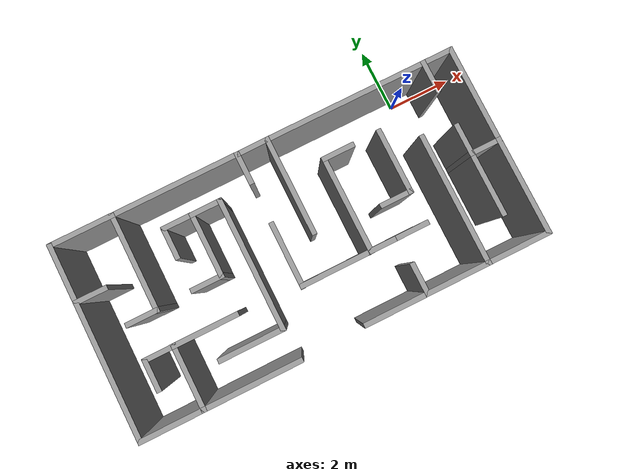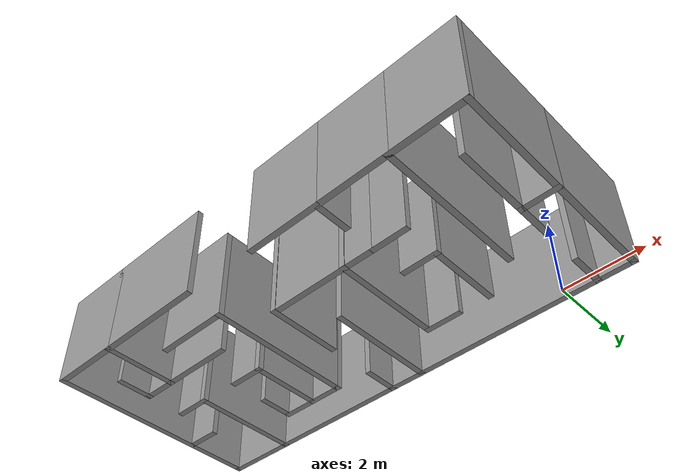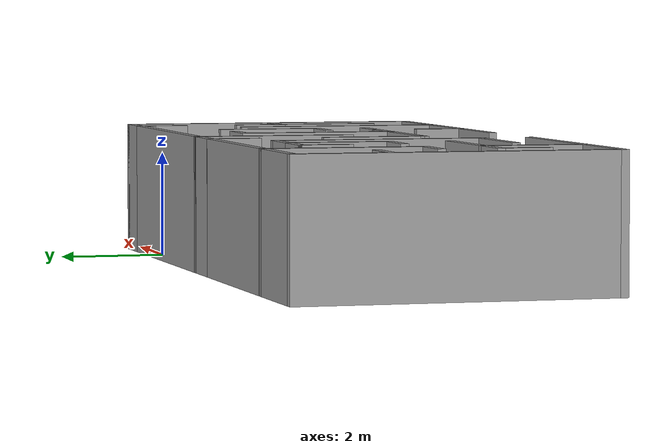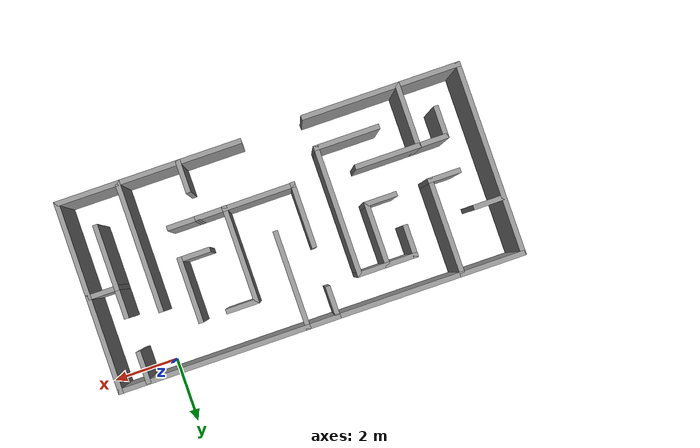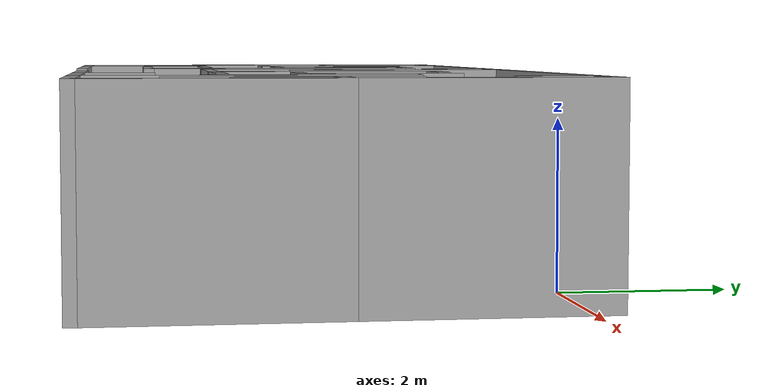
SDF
<?xml version='1.0'?>
<sdf version='1.7'>
  <model name='maze_built'>
    <pose>-4.54874 -2.62207 0 0 -0 0</pose>
    <link name='Wall_0'>
      <collision name='Wall_0_Collision'>
        <geometry>
          <box>
            <size>2 0.15 2.5</size>
          </box>
        </geometry>
        <pose>0 0 1.25 0 -0 0</pose>
      </collision>
      <visual name='Wall_0_Visual'>
        <pose>0 0 1.25 0 -0 0</pose>
        <geometry>
          <box>
            <size>2 0.15 2.5</size>
          </box>
        </geometry>
        <material>
          <script>
            <uri>file://media/materials/scripts/gazebo.material</uri>
            <name>Gazebo/Grey</name>
          </script>
          <ambient>1 1 1 1</ambient>
        </material>
        <meta>
          <layer>0</layer>
        </meta>
      </visual>
      <pose>-5.2 -2.87941 0 0 -0 0</pose>
    </link>
    <link name='Wall_102'>
      <collision name='Wall_102_Collision'>
        <geometry>
          <box>
            <size>2.23777 0.15 2.5</size>
          </box>
        </geometry>
        <pose>0 0 1.25 0 -0 0</pose>
      </collision>
      <visual name='Wall_102_Visual'>
        <pose>0 0 1.25 0 -0 0</pose>
        <geometry>
          <box>
            <size>2.23777 0.15 2.5</size>
          </box>
        </geometry>
        <material>
          <script>
            <uri>file://media/materials/scripts/gazebo.material</uri>
            <name>Gazebo/Grey</name>
          </script>
          <ambient>1 1 1 1</ambient>
        </material>
        <meta>
          <layer>0</layer>
        </meta>
      </visual>
      <pose>0.550122 -1.12784 0 0 -0 -3.13873</pose>
    </link>
    <link name='Wall_103'>
      <collision name='Wall_103_Collision'>
        <geometry>
          <box>
            <size>2 0.15 2.5</size>
          </box>
        </geometry>
        <pose>0 0 1.25 0 -0 0</pose>
      </collision>
      <visual name='Wall_103_Visual'>
        <pose>0 0 1.25 0 -0 0</pose>
        <geometry>
          <box>
            <size>2 0.15 2.5</size>
          </box>
        </geometry>
        <material>
          <script>
            <uri>file://media/materials/scripts/gazebo.material</uri>
            <name>Gazebo/Grey</name>
          </script>
          <ambient>1 1 1 1</ambient>
        </material>
        <meta>
          <layer>0</layer>
        </meta>
      </visual>
      <pose>-0.493757 -0.215773 0 0 -0 1.5708</pose>
    </link>
    <link name='Wall_105'>
      <collision name='Wall_105_Collision'>
        <geometry>
          <box>
            <size>1 0.15 2.5</size>
          </box>
        </geometry>
        <pose>0 0 1.25 0 -0 0</pose>
      </collision>
      <visual name='Wall_105_Visual'>
        <pose>0 0 1.25 0 -0 0</pose>
        <geometry>
          <box>
            <size>1 0.15 2.5</size>
          </box>
        </geometry>
        <material>
          <script>
            <uri>file://media/materials/scripts/gazebo.material</uri>
            <name>Gazebo/Grey</name>
          </script>
          <ambient>1 1 1 1</ambient>
        </material>
        <meta>
          <layer>0</layer>
        </meta>
      </visual>
      <pose>2.01246 1.69872 0 0 -0 0</pose>
    </link>
    <link name='Wall_107'>
      <collision name='Wall_107_Collision'>
        <geometry>
          <box>
            <size>2 0.15 2.5</size>
          </box>
        </geometry>
        <pose>0 0 1.25 0 -0 0</pose>
      </collision>
      <visual name='Wall_107_Visual'>
        <pose>0 0 1.25 0 -0 0</pose>
        <geometry>
          <box>
            <size>2 0.15 2.5</size>
          </box>
        </geometry>
        <material>
          <script>
            <uri>file://media/materials/scripts/gazebo.material</uri>
            <name>Gazebo/Grey</name>
          </script>
          <ambient>1 1 1 1</ambient>
        </material>
        <meta>
          <layer>0</layer>
        </meta>
      </visual>
      <pose>3.28746 0.773721 0 0 -0 -1.5708</pose>
    </link>
    <link name='Wall_108'>
      <collision name='Wall_108_Collision'>
        <geometry>
          <box>
            <size>1 0.15 2.5</size>
          </box>
        </geometry>
        <pose>0 0 1.25 0 -0 0</pose>
      </collision>
      <visual name='Wall_108_Visual'>
        <pose>0 0 1.25 0 -0 0</pose>
        <geometry>
          <box>
            <size>1 0.15 2.5</size>
          </box>
        </geometry>
        <material>
          <script>
            <uri>file://media/materials/scripts/gazebo.material</uri>
            <name>Gazebo/Grey</name>
          </script>
          <ambient>1 1 1 1</ambient>
        </material>
        <meta>
          <layer>0</layer>
        </meta>
      </visual>
      <pose>2.86246 -0.151279 0 0 -0 3.14159</pose>
    </link>
    <link name='Wall_12'>
      <collision name='Wall_12_Collision'>
        <geometry>
          <box>
            <size>2 0.15 2.5</size>
          </box>
        </geometry>
        <pose>0 0 1.25 0 -0 0</pose>
      </collision>
      <visual name='Wall_12_Visual'>
        <pose>0 0 1.25 0 -0 0</pose>
        <geometry>
          <box>
            <size>2 0.15 2.5</size>
          </box>
        </geometry>
        <material>
          <script>
            <uri>file://media/materials/scripts/gazebo.material</uri>
            <name>Gazebo/Grey</name>
          </script>
          <ambient>1 1 1 1</ambient>
        </material>
        <meta>
          <layer>0</layer>
        </meta>
      </visual>
      <pose>-4.275 -1.9544 0 0 -0 1.5708</pose>
    </link>
    <link name='Wall_14'>
      <collision name='Wall_14_Collision'>
        <geometry>
          <box>
            <size>1 0.15 2.5</size>
          </box>
        </geometry>
        <pose>0 0 1.25 0 -0 0</pose>
      </collision>
      <visual name='Wall_14_Visual'>
        <pose>0 0 1.25 0 -0 0</pose>
        <geometry>
          <box>
            <size>1 0.15 2.5</size>
          </box>
        </geometry>
        <material>
          <script>
            <uri>file://media/materials/scripts/gazebo.material</uri>
            <name>Gazebo/Grey</name>
          </script>
          <ambient>1 1 1 1</ambient>
        </material>
        <meta>
          <layer>0</layer>
        </meta>
      </visual>
      <pose>-4.7 -1.0294 0 0 -0 3.14159</pose>
    </link>
    <link name='Wall_17'>
      <collision name='Wall_17_Collision'>
        <geometry>
          <box>
            <size>2 0.15 2.5</size>
          </box>
        </geometry>
        <pose>0 0 1.25 0 -0 0</pose>
      </collision>
      <visual name='Wall_17_Visual'>
        <pose>0 0 1.25 0 -0 0</pose>
        <geometry>
          <box>
            <size>2 0.15 2.5</size>
          </box>
        </geometry>
        <material>
          <script>
            <uri>file://media/materials/scripts/gazebo.material</uri>
            <name>Gazebo/Grey</name>
          </script>
          <ambient>1 1 1 1</ambient>
        </material>
        <meta>
          <layer>0</layer>
        </meta>
      </visual>
      <pose>-3.35 -1.0294 0 0 -0 0</pose>
    </link>
    <link name='Wall_2'>
      <collision name='Wall_2_Collision'>
        <geometry>
          <box>
            <size>5.90852 0.15 2.5</size>
          </box>
        </geometry>
        <pose>0 0 1.25 0 -0 0</pose>
      </collision>
      <visual name='Wall_2_Visual'>
        <pose>0 0 1.25 0 -0 0</pose>
        <geometry>
          <box>
            <size>5.90852 0.15 2.5</size>
          </box>
        </geometry>
        <material>
          <script>
            <uri>file://media/materials/scripts/gazebo.material</uri>
            <name>Gazebo/Grey</name>
          </script>
          <ambient>1 1 1 1</ambient>
        </material>
        <meta>
          <layer>0</layer>
        </meta>
      </visual>
      <pose>-6.125 -0.000145 0 0 -0 1.5708</pose>
    </link>
    <link name='Wall_25'>
      <collision name='Wall_25_Collision'>
        <geometry>
          <box>
            <size>1 0.15 2.5</size>
          </box>
        </geometry>
        <pose>0 0 1.25 0 -0 0</pose>
      </collision>
      <visual name='Wall_25_Visual'>
        <pose>0 0 1.25 0 -0 0</pose>
        <geometry>
          <box>
            <size>1 0.15 2.5</size>
          </box>
        </geometry>
        <material>
          <script>
            <uri>file://media/materials/scripts/gazebo.material</uri>
            <name>Gazebo/Grey</name>
          </script>
          <ambient>1 1 1 1</ambient>
        </material>
        <meta>
          <layer>0</layer>
        </meta>
      </visual>
      <pose>-5.125 -1.4544 0 0 -0 -1.5708</pose>
    </link>
    <link name='Wall_41'>
      <collision name='Wall_41_Collision'>
        <geometry>
          <box>
            <size>2 0.15 2.5</size>
          </box>
        </geometry>
        <pose>0 0 1.25 0 -0 0</pose>
      </collision>
      <visual name='Wall_41_Visual'>
        <pose>0 0 1.25 0 -0 0</pose>
        <geometry>
          <box>
            <size>2 0.15 2.5</size>
          </box>
        </geometry>
        <material>
          <script>
            <uri>file://media/materials/scripts/gazebo.material</uri>
            <name>Gazebo/Grey</name>
          </script>
          <ambient>1 1 1 1</ambient>
        </material>
        <meta>
          <layer>0</layer>
        </meta>
      </visual>
      <pose>-2.39752 -1.92236 0 0 -0 0</pose>
    </link>
    <link name='Wall_43'>
      <collision name='Wall_43_Collision'>
        <geometry>
          <box>
            <size>4 0.15 2.5</size>
          </box>
        </geometry>
        <pose>0 0 1.25 0 -0 0</pose>
      </collision>
      <visual name='Wall_43_Visual'>
        <pose>0 0 1.25 0 -0 0</pose>
        <geometry>
          <box>
            <size>4 0.15 2.5</size>
          </box>
        </geometry>
        <material>
          <script>
            <uri>file://media/materials/scripts/gazebo.material</uri>
            <name>Gazebo/Grey</name>
          </script>
          <ambient>1 1 1 1</ambient>
        </material>
        <meta>
          <layer>0</layer>
        </meta>
      </visual>
      <pose>-1.47253 0.002642 0 0 -0 1.5708</pose>
    </link>
    <link name='Wall_44'>
      <collision name='Wall_44_Collision'>
        <geometry>
          <box>
            <size>1 0.15 2.5</size>
          </box>
        </geometry>
        <pose>0 0 1.25 0 -0 0</pose>
      </collision>
      <visual name='Wall_44_Visual'>
        <pose>0 0 1.25 0 -0 0</pose>
        <geometry>
          <box>
            <size>1 0.15 2.5</size>
          </box>
        </geometry>
        <material>
          <script>
            <uri>file://media/materials/scripts/gazebo.material</uri>
            <name>Gazebo/Grey</name>
          </script>
          <ambient>1 1 1 1</ambient>
        </material>
        <meta>
          <layer>0</layer>
        </meta>
      </visual>
      <pose>-1.89752 1.92764 0 0 -0 3.14159</pose>
    </link>
    <link name='Wall_45'>
      <collision name='Wall_45_Collision'>
        <geometry>
          <box>
            <size>2 0.15 2.5</size>
          </box>
        </geometry>
        <pose>0 0 1.25 0 -0 0</pose>
      </collision>
      <visual name='Wall_45_Visual'>
        <pose>0 0 1.25 0 -0 0</pose>
        <geometry>
          <box>
            <size>2 0.15 2.5</size>
          </box>
        </geometry>
        <material>
          <script>
            <uri>file://media/materials/scripts/gazebo.material</uri>
            <name>Gazebo/Grey</name>
          </script>
          <ambient>1 1 1 1</ambient>
        </material>
        <meta>
          <layer>0</layer>
        </meta>
      </visual>
      <pose>-2.32253 1.00264 0 0 -0 -1.5708</pose>
    </link>
    <link name='Wall_46'>
      <collision name='Wall_46_Collision'>
        <geometry>
          <box>
            <size>1 0.15 2.5</size>
          </box>
        </geometry>
        <pose>0 0 1.25 0 -0 0</pose>
      </collision>
      <visual name='Wall_46_Visual'>
        <pose>0 0 1.25 0 -0 0</pose>
        <geometry>
          <box>
            <size>1 0.15 2.5</size>
          </box>
        </geometry>
        <material>
          <script>
            <uri>file://media/materials/scripts/gazebo.material</uri>
            <name>Gazebo/Grey</name>
          </script>
          <ambient>1 1 1 1</ambient>
        </material>
        <meta>
          <layer>0</layer>
        </meta>
      </visual>
      <pose>-2.74752 0.077642 0 0 -0 3.14159</pose>
    </link>
    <link name='Wall_48'>
      <collision name='Wall_48_Collision'>
        <geometry>
          <box>
            <size>1 0.15 2.5</size>
          </box>
        </geometry>
        <pose>0 0 1.25 0 -0 0</pose>
      </collision>
      <visual name='Wall_48_Visual'>
        <pose>0 0 1.25 0 -0 0</pose>
        <geometry>
          <box>
            <size>1 0.15 2.5</size>
          </box>
        </geometry>
        <material>
          <script>
            <uri>file://media/materials/scripts/gazebo.material</uri>
            <name>Gazebo/Grey</name>
          </script>
          <ambient>1 1 1 1</ambient>
        </material>
        <meta>
          <layer>0</layer>
        </meta>
      </visual>
      <pose>-2.74752 1.92764 0 0 -0 3.14159</pose>
    </link>
    <link name='Wall_49'>
      <collision name='Wall_49_Collision'>
        <geometry>
          <box>
            <size>1 0.15 2.5</size>
          </box>
        </geometry>
        <pose>0 0 1.25 0 -0 0</pose>
      </collision>
      <visual name='Wall_49_Visual'>
        <pose>0 0 1.25 0 -0 0</pose>
        <geometry>
          <box>
            <size>1 0.15 2.5</size>
          </box>
        </geometry>
        <material>
          <script>
            <uri>file://media/materials/scripts/gazebo.material</uri>
            <name>Gazebo/Grey</name>
          </script>
          <ambient>1 1 1 1</ambient>
        </material>
        <meta>
          <layer>0</layer>
        </meta>
      </visual>
      <pose>-3.17252 1.50264 0 0 -0 -1.5708</pose>
    </link>
    <link name='Wall_5'>
      <collision name='Wall_5_Collision'>
        <geometry>
          <box>
            <size>2 0.15 2.5</size>
          </box>
        </geometry>
        <pose>0 0 1.25 0 -0 0</pose>
      </collision>
      <visual name='Wall_5_Visual'>
        <pose>0 0 1.25 0 -0 0</pose>
        <geometry>
          <box>
            <size>2 0.15 2.5</size>
          </box>
        </geometry>
        <material>
          <script>
            <uri>file://media/materials/scripts/gazebo.material</uri>
            <name>Gazebo/Grey</name>
          </script>
          <ambient>1 1 1 1</ambient>
        </material>
        <meta>
          <layer>0</layer>
        </meta>
      </visual>
      <pose>-5.2 2.87911 0 0 -0 0</pose>
    </link>
    <link name='Wall_57'>
      <collision name='Wall_57_Collision'>
        <geometry>
          <box>
            <size>1 0.15 2.5</size>
          </box>
        </geometry>
        <pose>0 0 1.25 0 -0 0</pose>
      </collision>
      <visual name='Wall_57_Visual'>
        <pose>0 0 1.25 0 -0 0</pose>
        <geometry>
          <box>
            <size>1 0.15 2.5</size>
          </box>
        </geometry>
        <material>
          <script>
            <uri>file://media/materials/scripts/gazebo.material</uri>
            <name>Gazebo/Grey</name>
          </script>
          <ambient>1 1 1 1</ambient>
        </material>
        <meta>
          <layer>0</layer>
        </meta>
      </visual>
      <pose>-5.69514 1.17747 0 0 -0 0</pose>
    </link>
    <link name='Wall_59'>
      <collision name='Wall_59_Collision'>
        <geometry>
          <box>
            <size>3 0.15 2.5</size>
          </box>
        </geometry>
        <pose>0 0 1.25 0 -0 0</pose>
      </collision>
      <visual name='Wall_59_Visual'>
        <pose>0 0 1.25 0 -0 0</pose>
        <geometry>
          <box>
            <size>3 0.15 2.5</size>
          </box>
        </geometry>
        <material>
          <script>
            <uri>file://media/materials/scripts/gazebo.material</uri>
            <name>Gazebo/Grey</name>
          </script>
          <ambient>1 1 1 1</ambient>
        </material>
        <meta>
          <layer>0</layer>
        </meta>
      </visual>
      <pose>-4.275 1.45411 0 0 -0 -1.5708</pose>
    </link>
    <link name='Wall_60'>
      <collision name='Wall_60_Collision'>
        <geometry>
          <box>
            <size>1 0.15 2.5</size>
          </box>
        </geometry>
        <pose>0 0 1.25 0 -0 0</pose>
      </collision>
      <visual name='Wall_60_Visual'>
        <pose>0 0 1.25 0 -0 0</pose>
        <geometry>
          <box>
            <size>1 0.15 2.5</size>
          </box>
        </geometry>
        <material>
          <script>
            <uri>file://media/materials/scripts/gazebo.material</uri>
            <name>Gazebo/Grey</name>
          </script>
          <ambient>1 1 1 1</ambient>
        </material>
        <meta>
          <layer>0</layer>
        </meta>
      </visual>
      <pose>-4.7 0.029114 0 0 -0 3.14159</pose>
    </link>
    <link name='Wall_62'>
      <collision name='Wall_62_Collision'>
        <geometry>
          <box>
            <size>3.93529 0.15 2.5</size>
          </box>
        </geometry>
        <pose>0 0 1.25 0 -0 0</pose>
      </collision>
      <visual name='Wall_62_Visual'>
        <pose>0 0 1.25 0 -0 0</pose>
        <geometry>
          <box>
            <size>3.93529 0.15 2.5</size>
          </box>
        </geometry>
        <material>
          <script>
            <uri>file://media/materials/scripts/gazebo.material</uri>
            <name>Gazebo/Grey</name>
          </script>
          <ambient>1 1 1 1</ambient>
        </material>
        <meta>
          <layer>0</layer>
        </meta>
      </visual>
      <pose>-2.38236 2.87734 0 0 -0 -0.000938</pose>
    </link>
    <link name='Wall_63'>
      <collision name='Wall_63_Collision'>
        <geometry>
          <box>
            <size>1 0.15 2.5</size>
          </box>
        </geometry>
        <pose>0 0 1.25 0 -0 0</pose>
      </collision>
      <visual name='Wall_63_Visual'>
        <pose>0 0 1.25 0 -0 0</pose>
        <geometry>
          <box>
            <size>1 0.15 2.5</size>
          </box>
        </geometry>
        <material>
          <script>
            <uri>file://media/materials/scripts/gazebo.material</uri>
            <name>Gazebo/Grey</name>
          </script>
          <ambient>1 1 1 1</ambient>
        </material>
        <meta>
          <layer>0</layer>
        </meta>
      </visual>
      <pose>-0.489714 2.45057 0 0 -0 -1.5708</pose>
    </link>
    <link name='Wall_65'>
      <collision name='Wall_65_Collision'>
        <geometry>
          <box>
            <size>1.06472 0.15 2.5</size>
          </box>
        </geometry>
        <pose>0 0 1.25 0 -0 0</pose>
      </collision>
      <visual name='Wall_65_Visual'>
        <pose>0 0 1.25 0 -0 0</pose>
        <geometry>
          <box>
            <size>1.06472 0.15 2.5</size>
          </box>
        </geometry>
        <material>
          <script>
            <uri>file://media/materials/scripts/gazebo.material</uri>
            <name>Gazebo/Grey</name>
          </script>
          <ambient>1 1 1 1</ambient>
        </material>
        <meta>
          <layer>0</layer>
        </meta>
      </visual>
      <pose>-0.032357 2.87734 0 0 -0 0.00388</pose>
    </link>
    <link name='Wall_66'>
      <collision name='Wall_66_Collision'>
        <geometry>
          <box>
            <size>3 0.15 2.5</size>
          </box>
        </geometry>
        <pose>0 0 1.25 0 -0 0</pose>
      </collision>
      <visual name='Wall_66_Visual'>
        <pose>0 0 1.25 0 -0 0</pose>
        <geometry>
          <box>
            <size>3 0.15 2.5</size>
          </box>
        </geometry>
        <material>
          <script>
            <uri>file://media/materials/scripts/gazebo.material</uri>
            <name>Gazebo/Grey</name>
          </script>
          <ambient>1 1 1 1</ambient>
        </material>
        <meta>
          <layer>0</layer>
        </meta>
      </visual>
      <pose>0.425 1.45411 0 0 -0 -1.5708</pose>
    </link>
    <link name='Wall_68'>
      <collision name='Wall_68_Collision'>
        <geometry>
          <box>
            <size>5 0.15 2.5</size>
          </box>
        </geometry>
        <pose>0 0 1.25 0 -0 0</pose>
      </collision>
      <visual name='Wall_68_Visual'>
        <pose>0 0 1.25 0 -0 0</pose>
        <geometry>
          <box>
            <size>5 0.15 2.5</size>
          </box>
        </geometry>
        <material>
          <script>
            <uri>file://media/materials/scripts/gazebo.material</uri>
            <name>Gazebo/Grey</name>
          </script>
          <ambient>1 1 1 1</ambient>
        </material>
        <meta>
          <layer>0</layer>
        </meta>
      </visual>
      <pose>2.85 2.87911 0 0 -0 0</pose>
    </link>
    <link name='Wall_69'>
      <collision name='Wall_69_Collision'>
        <geometry>
          <box>
            <size>1 0.15 2.5</size>
          </box>
        </geometry>
        <pose>0 0 1.25 0 -0 0</pose>
      </collision>
      <visual name='Wall_69_Visual'>
        <pose>0 0 1.25 0 -0 0</pose>
        <geometry>
          <box>
            <size>1 0.15 2.5</size>
          </box>
        </geometry>
        <material>
          <script>
            <uri>file://media/materials/scripts/gazebo.material</uri>
            <name>Gazebo/Grey</name>
          </script>
          <ambient>1 1 1 1</ambient>
        </material>
        <meta>
          <layer>0</layer>
        </meta>
      </visual>
      <pose>5.275 2.45411 0 0 -0 -1.5708</pose>
    </link>
    <link name='Wall_71'>
      <collision name='Wall_71_Collision'>
        <geometry>
          <box>
            <size>1 0.15 2.5</size>
          </box>
        </geometry>
        <pose>0 0 1.25 0 -0 0</pose>
      </collision>
      <visual name='Wall_71_Visual'>
        <pose>0 0 1.25 0 -0 0</pose>
        <geometry>
          <box>
            <size>1 0.15 2.5</size>
          </box>
        </geometry>
        <material>
          <script>
            <uri>file://media/materials/scripts/gazebo.material</uri>
            <name>Gazebo/Grey</name>
          </script>
          <ambient>1 1 1 1</ambient>
        </material>
        <meta>
          <layer>0</layer>
        </meta>
      </visual>
      <pose>5.7 2.87911 0 0 -0 0</pose>
    </link>
    <link name='Wall_72'>
      <collision name='Wall_72_Collision'>
        <geometry>
          <box>
            <size>3 0.15 2.5</size>
          </box>
        </geometry>
        <pose>0 0 1.25 0 -0 0</pose>
      </collision>
      <visual name='Wall_72_Visual'>
        <pose>0 0 1.25 0 -0 0</pose>
        <geometry>
          <box>
            <size>3 0.15 2.5</size>
          </box>
        </geometry>
        <material>
          <script>
            <uri>file://media/materials/scripts/gazebo.material</uri>
            <name>Gazebo/Grey</name>
          </script>
          <ambient>1 1 1 1</ambient>
        </material>
        <meta>
          <layer>0</layer>
        </meta>
      </visual>
      <pose>6.125 1.45411 0 0 -0 -1.5708</pose>
    </link>
    <link name='Wall_73'>
      <collision name='Wall_73_Collision'>
        <geometry>
          <box>
            <size>1 0.15 2.5</size>
          </box>
        </geometry>
        <pose>0 0 1.25 0 -0 0</pose>
      </collision>
      <visual name='Wall_73_Visual'>
        <pose>0 0 1.25 0 -0 0</pose>
        <geometry>
          <box>
            <size>1 0.15 2.5</size>
          </box>
        </geometry>
        <material>
          <script>
            <uri>file://media/materials/scripts/gazebo.material</uri>
            <name>Gazebo/Grey</name>
          </script>
          <ambient>1 1 1 1</ambient>
        </material>
        <meta>
          <layer>0</layer>
        </meta>
      </visual>
      <pose>5.7 0.029114 0 0 -0 3.14159</pose>
    </link>
    <link name='Wall_79'>
      <collision name='Wall_79_Collision'>
        <geometry>
          <box>
            <size>3 0.15 2.5</size>
          </box>
        </geometry>
        <pose>0 0 1.25 0 -0 0</pose>
      </collision>
      <visual name='Wall_79_Visual'>
        <pose>0 0 1.25 0 -0 0</pose>
        <geometry>
          <box>
            <size>3 0.15 2.5</size>
          </box>
        </geometry>
        <material>
          <script>
            <uri>file://media/materials/scripts/gazebo.material</uri>
            <name>Gazebo/Grey</name>
          </script>
          <ambient>1 1 1 1</ambient>
        </material>
        <meta>
          <layer>0</layer>
        </meta>
      </visual>
      <pose>6.125 -1.39589 0 0 -0 -1.5708</pose>
    </link>
    <link name='Wall_81'>
      <collision name='Wall_81_Collision'>
        <geometry>
          <box>
            <size>2 0.15 2.5</size>
          </box>
        </geometry>
        <pose>0 0 1.25 0 -0 0</pose>
      </collision>
      <visual name='Wall_81_Visual'>
        <pose>0 0 1.25 0 -0 0</pose>
        <geometry>
          <box>
            <size>2 0.15 2.5</size>
          </box>
        </geometry>
        <material>
          <script>
            <uri>file://media/materials/scripts/gazebo.material</uri>
            <name>Gazebo/Grey</name>
          </script>
          <ambient>1 1 1 1</ambient>
        </material>
        <meta>
          <layer>0</layer>
        </meta>
      </visual>
      <pose>5.2 -2.82089 0 0 -0 3.14159</pose>
    </link>
    <link name='Wall_82'>
      <collision name='Wall_82_Collision'>
        <geometry>
          <box>
            <size>4 0.15 2.5</size>
          </box>
        </geometry>
        <pose>0 0 1.25 0 -0 0</pose>
      </collision>
      <visual name='Wall_82_Visual'>
        <pose>0 0 1.25 0 -0 0</pose>
        <geometry>
          <box>
            <size>4 0.15 2.5</size>
          </box>
        </geometry>
        <material>
          <script>
            <uri>file://media/materials/scripts/gazebo.material</uri>
            <name>Gazebo/Grey</name>
          </script>
          <ambient>1 1 1 1</ambient>
        </material>
        <meta>
          <layer>0</layer>
        </meta>
      </visual>
      <pose>4.275 -0.895886 0 0 -0 1.5708</pose>
    </link>
    <link name='Wall_84'>
      <collision name='Wall_84_Collision'>
        <geometry>
          <box>
            <size>1 0.15 2.5</size>
          </box>
        </geometry>
        <pose>0 0 1.25 0 -0 0</pose>
      </collision>
      <visual name='Wall_84_Visual'>
        <pose>0 0 1.25 0 -0 0</pose>
        <geometry>
          <box>
            <size>1 0.15 2.5</size>
          </box>
        </geometry>
        <material>
          <script>
            <uri>file://media/materials/scripts/gazebo.material</uri>
            <name>Gazebo/Grey</name>
          </script>
          <ambient>1 1 1 1</ambient>
        </material>
        <meta>
          <layer>0</layer>
        </meta>
      </visual>
      <pose>5.275 0.454114 0 0 -0 1.5708</pose>
    </link>
    <link name='Wall_86'>
      <collision name='Wall_86_Collision'>
        <geometry>
          <box>
            <size>2 0.15 2.5</size>
          </box>
        </geometry>
        <pose>0 0 1.25 0 -0 0</pose>
      </collision>
      <visual name='Wall_86_Visual'>
        <pose>0 0 1.25 0 -0 0</pose>
        <geometry>
          <box>
            <size>2 0.15 2.5</size>
          </box>
        </geometry>
        <material>
          <script>
            <uri>file://media/materials/scripts/gazebo.material</uri>
            <name>Gazebo/Grey</name>
          </script>
          <ambient>1 1 1 1</ambient>
        </material>
        <meta>
          <layer>0</layer>
        </meta>
      </visual>
      <pose>5.275 -0.895886 0 0 -0 -1.5708</pose>
    </link>
    <link name='Wall_88'>
      <collision name='Wall_88_Collision'>
        <geometry>
          <box>
            <size>2 0.15 2.5</size>
          </box>
        </geometry>
        <pose>0 0 1.25 0 -0 0</pose>
      </collision>
      <visual name='Wall_88_Visual'>
        <pose>0 0 1.25 0 -0 0</pose>
        <geometry>
          <box>
            <size>2 0.15 2.5</size>
          </box>
        </geometry>
        <material>
          <script>
            <uri>file://media/materials/scripts/gazebo.material</uri>
            <name>Gazebo/Grey</name>
          </script>
          <ambient>1 1 1 1</ambient>
        </material>
        <meta>
          <layer>0</layer>
        </meta>
      </visual>
      <pose>3.35 -2.82089 0 0 -0 3.14159</pose>
    </link>
    <link name='Wall_89'>
      <collision name='Wall_89_Collision'>
        <geometry>
          <box>
            <size>1 0.15 2.5</size>
          </box>
        </geometry>
        <pose>0 0 1.25 0 -0 0</pose>
      </collision>
      <visual name='Wall_89_Visual'>
        <pose>0 0 1.25 0 -0 0</pose>
        <geometry>
          <box>
            <size>1 0.15 2.5</size>
          </box>
        </geometry>
        <material>
          <script>
            <uri>file://media/materials/scripts/gazebo.material</uri>
            <name>Gazebo/Grey</name>
          </script>
          <ambient>1 1 1 1</ambient>
        </material>
        <meta>
          <layer>0</layer>
        </meta>
      </visual>
      <pose>2.425 -2.39589 0 0 -0 1.5708</pose>
    </link>
    <link name='Wall_91'>
      <collision name='Wall_91_Collision'>
        <geometry>
          <box>
            <size>2 0.15 2.5</size>
          </box>
        </geometry>
        <pose>0 0 1.25 0 -0 0</pose>
      </collision>
      <visual name='Wall_91_Visual'>
        <pose>0 0 1.25 0 -0 0</pose>
        <geometry>
          <box>
            <size>2 0.15 2.5</size>
          </box>
        </geometry>
        <material>
          <script>
            <uri>file://media/materials/scripts/gazebo.material</uri>
            <name>Gazebo/Grey</name>
          </script>
          <ambient>1 1 1 1</ambient>
        </material>
        <meta>
          <layer>0</layer>
        </meta>
      </visual>
      <pose>1.5 -2.82089 0 0 -0 3.14159</pose>
    </link>
    <link name='Wall_93'>
      <collision name='Wall_93_Collision'>
        <geometry>
          <box>
            <size>3 0.15 2.5</size>
          </box>
        </geometry>
        <pose>0 0 1.25 0 -0 0</pose>
      </collision>
      <visual name='Wall_93_Visual'>
        <pose>0 0 1.25 0 -0 0</pose>
        <geometry>
          <box>
            <size>3 0.15 2.5</size>
          </box>
        </geometry>
        <material>
          <script>
            <uri>file://media/materials/scripts/gazebo.material</uri>
            <name>Gazebo/Grey</name>
          </script>
          <ambient>1 1 1 1</ambient>
        </material>
        <meta>
          <layer>0</layer>
        </meta>
      </visual>
      <pose>-2.85 -2.87941 0 0 -0 0</pose>
    </link>
    <link name='Wall_96'>
      <collision name='Wall_96_Collision'>
        <geometry>
          <box>
            <size>1 0.15 2.5</size>
          </box>
        </geometry>
        <pose>0 0 1.25 0 -0 0</pose>
      </collision>
      <visual name='Wall_96_Visual'>
        <pose>0 0 1.25 0 -0 0</pose>
        <geometry>
          <box>
            <size>1 0.15 2.5</size>
          </box>
        </geometry>
        <material>
          <script>
            <uri>file://media/materials/scripts/gazebo.material</uri>
            <name>Gazebo/Grey</name>
          </script>
          <ambient>1 1 1 1</ambient>
        </material>
        <meta>
          <layer>0</layer>
        </meta>
      </visual>
      <pose>2.85 -1.12089 0 0 -0 0</pose>
    </link>
    <link name='Wall_98'>
      <collision name='Wall_98_Collision'>
        <geometry>
          <box>
            <size>0.981009 0.15 2.5</size>
          </box>
        </geometry>
        <pose>0 0 1.25 0 -0 0</pose>
      </collision>
      <visual name='Wall_98_Visual'>
        <pose>0 0 1.25 0 -0 0</pose>
        <geometry>
          <box>
            <size>0.981009 0.15 2.5</size>
          </box>
        </geometry>
        <material>
          <script>
            <uri>file://media/materials/scripts/gazebo.material</uri>
            <name>Gazebo/Grey</name>
          </script>
          <ambient>1 1 1 1</ambient>
        </material>
        <meta>
          <layer>0</layer>
        </meta>
      </visual>
      <pose>2.0095 -1.12287 0 0 -0 -3.13682</pose>
    </link>
    <link name='Wall_99'>
      <collision name='Wall_99_Collision'>
        <geometry>
          <box>
            <size>2.98011 0.15 2.5</size>
          </box>
        </geometry>
        <pose>0 0 1.25 0 -0 0</pose>
      </collision>
      <visual name='Wall_99_Visual'>
        <pose>0 0 1.25 0 -0 0</pose>
        <geometry>
          <box>
            <size>2.98011 0.15 2.5</size>
          </box>
        </geometry>
        <material>
          <script>
            <uri>file://media/materials/scripts/gazebo.material</uri>
            <name>Gazebo/Grey</name>
          </script>
          <ambient>1 1 1 1</ambient>
        </material>
        <meta>
          <layer>0</layer>
        </meta>
      </visual>
      <pose>1.58746 0.283664 0 0 -0 1.5708</pose>
    </link>
    <static>1</static>
  </model>
</sdf>
